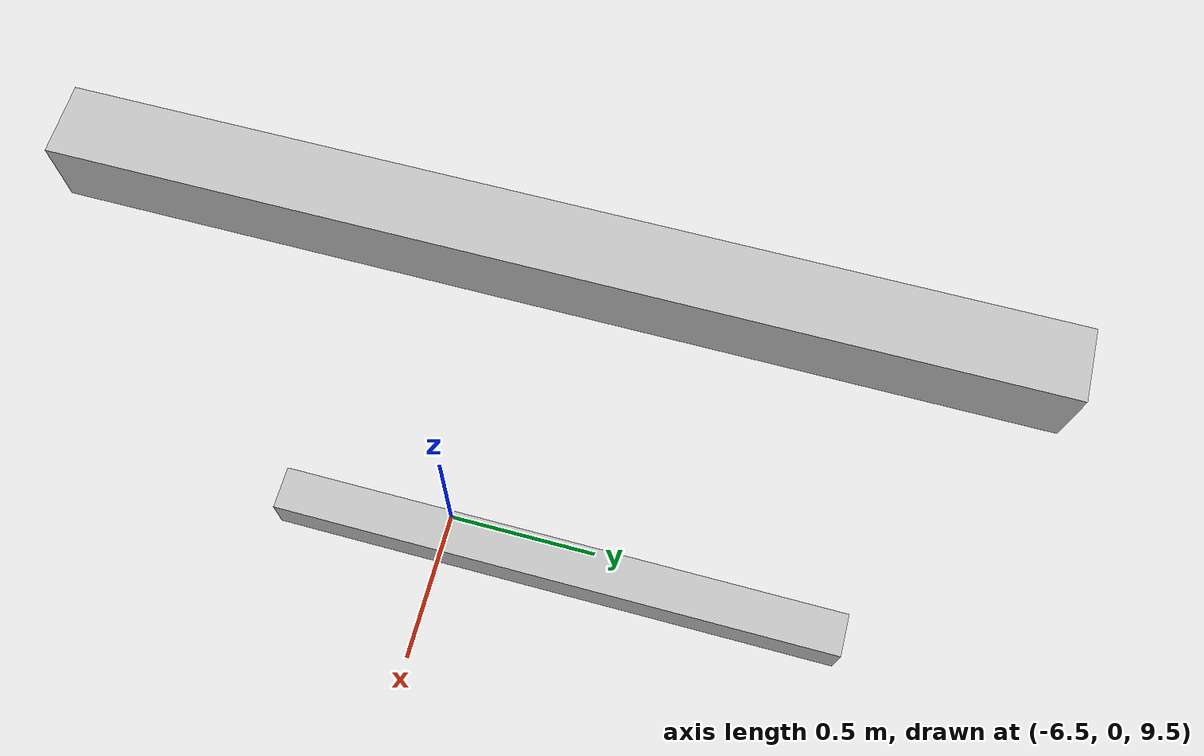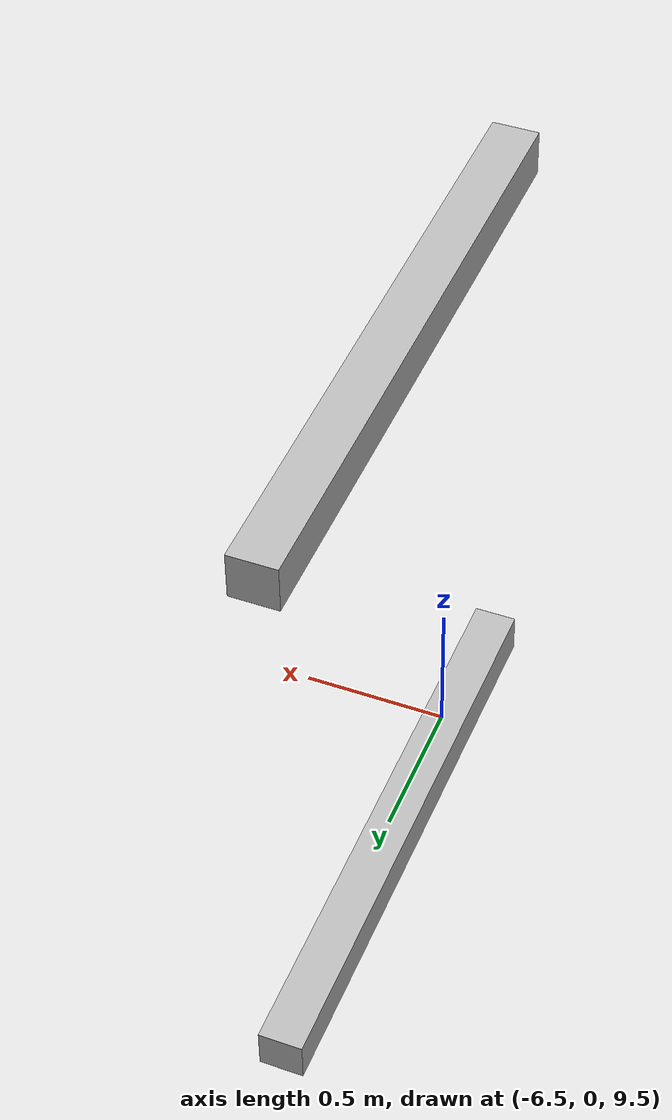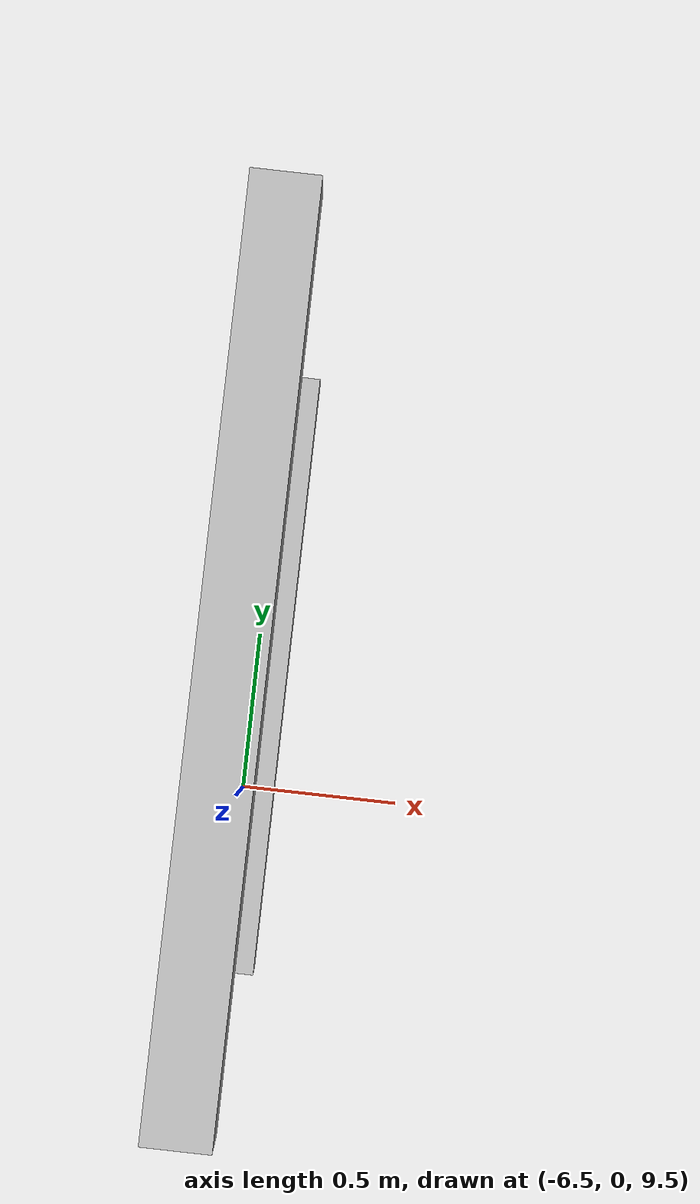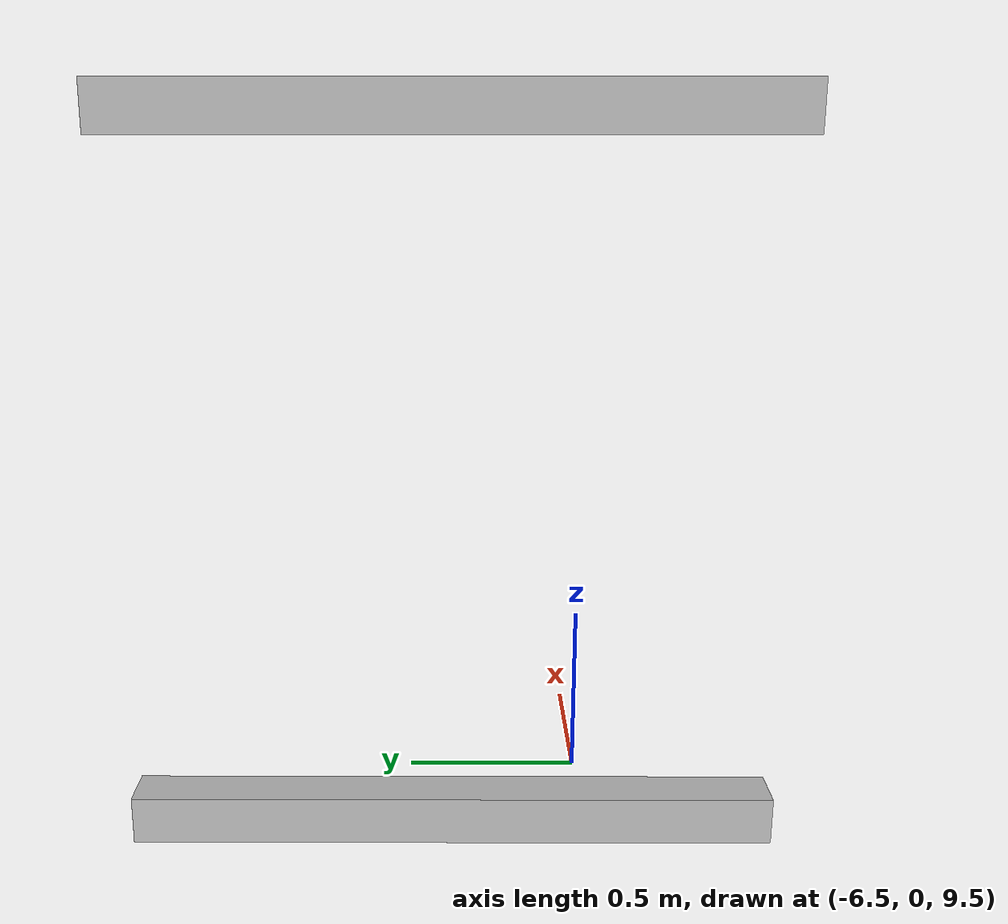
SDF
<sdf version="1.7">
 <world name="default">
  <model name="orthogonal_747_2.000.15_TS">
   <static>1</static>
   <link name="y_link_5_2_0">
    <inertial>
     <mass>1</mass>
     <inertia>
      <ixx>0.166667</ixx>
      <ixy>0</ixy>
      <ixz>0</ixz>
      <iyy>0.166667</iyy>
      <iyz>0</iyz>
      <izz>0.166667</izz>
     </inertia>
    </inertial>
    <pose>0 5.375 11.825 0 -0 0</pose>
    <visual name="visual_0">
     <laser_retro>4761</laser_retro>
     <geometry><box><size>0.15 1e-06 0.15</size></box></geometry>
     <material>
      <script><name>Gazebo/Grey</name><uri>file://media/materials/scripts/gazebo.material</uri></script>
      <shader type="pixel"><normal_map>__default__</normal_map></shader>
      <ambient>0.678 0.498 0.659 1</ambient>
      <diffuse>0.7 0.7 0.7 1</diffuse>
      <specular>0.01 0.01 0.01 1</specular>
      <emissive>0 0 0 1</emissive>
     </material>
     <pose>0 -1 0 0 -0 0</pose>
     <transparency>1</transparency>
    </visual>
    <visual name="visual_1">
     <laser_retro>4762</laser_retro>
     <geometry><box><size>0.15 1e-06 0.15</size></box></geometry>
     <material>
      <script><name>Gazebo/Grey</name><uri>file://media/materials/scripts/gazebo.material</uri></script>
      <shader type="pixel"><normal_map>__default__</normal_map></shader>
      <ambient>0.447 0.624 0.812 1</ambient>
      <diffuse>0.7 0.7 0.7 1</diffuse>
      <specular>0.01 0.01 0.01 1</specular>
      <emissive>0 0 0 1</emissive>
     </material>
     <pose>0 1 0 0 -0 0</pose>
     <transparency>1</transparency>
    </visual>
    <visual name="visual_2">
     <laser_retro>4763</laser_retro>
     <geometry><box><size>0.15 2 1e-06</size></box></geometry>
     <material>
      <script><name>Gazebo/Grey</name><uri>file://media/materials/scripts/gazebo.material</uri></script>
      <shader type="pixel"><normal_map>__default__</normal_map></shader>
      <ambient>0.988 0.686 0.243 1</ambient>
      <diffuse>0.7 0.7 0.7 1</diffuse>
      <specular>0.01 0.01 0.01 1</specular>
      <emissive>0 0 0 1</emissive>
     </material>
     <pose>0 0 -0.075 0 -0 0</pose>
     <transparency>1</transparency>
    </visual>
    <visual name="visual_3">
     <laser_retro>4764</laser_retro>
     <geometry><box><size>1e-06 2 0.15</size></box></geometry>
     <material>
      <script><name>Gazebo/Grey</name><uri>file://media/materials/scripts/gazebo.material</uri></script>
      <shader type="pixel"><normal_map>__default__</normal_map></shader>
      <ambient>0.988 0.914 0.31 1</ambient>
      <diffuse>0.7 0.7 0.7 1</diffuse>
      <specular>0.01 0.01 0.01 1</specular>
      <emissive>0 0 0 1</emissive>
     </material>
     <pose>0.075 0 0 0 -0 0</pose>
     <transparency>1</transparency>
    </visual>
    <visual name="visual_4">
     <laser_retro>4765</laser_retro>
     <geometry><box><size>0.15 2 1e-06</size></box></geometry>
     <material>
      <script><name>Gazebo/Grey</name><uri>file://media/materials/scripts/gazebo.material</uri></script>
      <shader type="pixel"><normal_map>__default__</normal_map></shader>
      <ambient>0.937 0.161 0.161 1</ambient>
      <diffuse>0.7 0.7 0.7 1</diffuse>
      <specular>0.01 0.01 0.01 1</specular>
      <emissive>0 0 0 1</emissive>
     </material>
     <pose>0 0 0.075 0 -0 0</pose>
     <transparency>1</transparency>
    </visual>
    <visual name="visual_5">
     <laser_retro>4766</laser_retro>
     <geometry><box><size>1e-06 2 0.15</size></box></geometry>
     <material>
      <script><name>Gazebo/Grey</name><uri>file://media/materials/scripts/gazebo.material</uri></script>
      <shader type="pixel"><normal_map>__default__</normal_map></shader>
      <ambient>0.541 0.886 0.204 1</ambient>
      <diffuse>0.7 0.7 0.7 1</diffuse>
      <specular>0.01 0.01 0.01 1</specular>
      <emissive>0 0 0 1</emissive>
     </material>
     <pose>-0.075 0 0 0 -0 0</pose>
     <transparency>1</transparency>
    </visual>
    <visual name="visual_texture">
     <geometry><box><size>0.149985 1.9998 0.149985</size></box></geometry>
     <material>
      <script>
       <uri>model://BASE_MODELS/simple_block_v2_textured/materials/scripts</uri>
       <uri>model://BASE_MODELS/simple_block_v2_textured/materials/textures</uri>
       <name>metal</name>
      </script>
     </material>
     <laser_retro>4767</laser_retro>
    </visual>
    <collision name="collision">
     <geometry><box><size>0.15 2 0.15</size></box></geometry>
     <surface>
      <friction>
       <ode><mu>1</mu><mu2>1</mu2><fdir1>0 0 0</fdir1><slip1>0</slip1><slip2>0</slip2></ode>
       <torsional>
        <coefficient>1</coefficient>
        <patch_radius>0</patch_radius>
        <surface_radius>0</surface_radius>
        <use_patch_radius>1</use_patch_radius>
        <ode><slip>0</slip></ode>
       </torsional>
      </friction>
      <bounce><restitution_coefficient>0</restitution_coefficient><threshold>1e+06</threshold></bounce>
      <contact>
       <collide_without_contact>0</collide_without_contact>
       <collide_without_contact_bitmask>1</collide_without_contact_bitmask>
       <collide_bitmask>1</collide_bitmask>
       <ode>
        <soft_cfm>0</soft_cfm>
        <soft_erp>0.2</soft_erp>
        <kp>1e+13</kp>
        <kd>1</kd>
        <max_vel>0.01</max_vel>
        <min_depth>0</min_depth>
       </ode>
       <bullet>
        <split_impulse>1</split_impulse>
        <split_impulse_penetration_threshold>-0.01</split_impulse_penetration_threshold>
        <soft_cfm>0</soft_cfm>
        <soft_erp>0.2</soft_erp>
        <kp>1e+13</kp>
        <kd>1</kd>
       </bullet>
      </contact>
     </surface>
    </collision>
   </link>
   <link name="y_link_6_2_0">
    <inertial>
     <mass>1</mass>
     <inertia>
      <ixx>0.166667</ixx>
      <ixy>0</ixy>
      <ixz>0</ixz>
      <iyy>0.166667</iyy>
      <iyz>0</iyz>
      <izz>0.166667</izz>
     </inertia>
    </inertial>
    <pose>0 5.375 13.975 0 -0 0</pose>
    <visual name="visual_0">
     <laser_retro>5706</laser_retro>
     <geometry><box><size>0.15 1e-06 0.15</size></box></geometry>
     <material>
      <script><name>Gazebo/Grey</name><uri>file://media/materials/scripts/gazebo.material</uri></script>
      <shader type="pixel"><normal_map>__default__</normal_map></shader>
      <ambient>0.678 0.498 0.659 1</ambient>
      <diffuse>0.7 0.7 0.7 1</diffuse>
      <specular>0.01 0.01 0.01 1</specular>
      <emissive>0 0 0 1</emissive>
     </material>
     <pose>0 -1 0 0 -0 0</pose>
     <transparency>1</transparency>
    </visual>
    <visual name="visual_1">
     <laser_retro>5707</laser_retro>
     <geometry><box><size>0.15 1e-06 0.15</size></box></geometry>
     <material>
      <script><name>Gazebo/Grey</name><uri>file://media/materials/scripts/gazebo.material</uri></script>
      <shader type="pixel"><normal_map>__default__</normal_map></shader>
      <ambient>0.447 0.624 0.812 1</ambient>
      <diffuse>0.7 0.7 0.7 1</diffuse>
      <specular>0.01 0.01 0.01 1</specular>
      <emissive>0 0 0 1</emissive>
     </material>
     <pose>0 1 0 0 -0 0</pose>
     <transparency>1</transparency>
    </visual>
    <visual name="visual_2">
     <laser_retro>5708</laser_retro>
     <geometry><box><size>0.15 2 1e-06</size></box></geometry>
     <material>
      <script><name>Gazebo/Grey</name><uri>file://media/materials/scripts/gazebo.material</uri></script>
      <shader type="pixel"><normal_map>__default__</normal_map></shader>
      <ambient>0.988 0.686 0.243 1</ambient>
      <diffuse>0.7 0.7 0.7 1</diffuse>
      <specular>0.01 0.01 0.01 1</specular>
      <emissive>0 0 0 1</emissive>
     </material>
     <pose>0 0 -0.075 0 -0 0</pose>
     <transparency>1</transparency>
    </visual>
    <visual name="visual_3">
     <laser_retro>5709</laser_retro>
     <geometry><box><size>1e-06 2 0.15</size></box></geometry>
     <material>
      <script><name>Gazebo/Grey</name><uri>file://media/materials/scripts/gazebo.material</uri></script>
      <shader type="pixel"><normal_map>__default__</normal_map></shader>
      <ambient>0.988 0.914 0.31 1</ambient>
      <diffuse>0.7 0.7 0.7 1</diffuse>
      <specular>0.01 0.01 0.01 1</specular>
      <emissive>0 0 0 1</emissive>
     </material>
     <pose>0.075 0 0 0 -0 0</pose>
     <transparency>1</transparency>
    </visual>
    <visual name="visual_4">
     <laser_retro>5710</laser_retro>
     <geometry><box><size>0.15 2 1e-06</size></box></geometry>
     <material>
      <script><name>Gazebo/Grey</name><uri>file://media/materials/scripts/gazebo.material</uri></script>
      <shader type="pixel"><normal_map>__default__</normal_map></shader>
      <ambient>0.937 0.161 0.161 1</ambient>
      <diffuse>0.7 0.7 0.7 1</diffuse>
      <specular>0.01 0.01 0.01 1</specular>
      <emissive>0 0 0 1</emissive>
     </material>
     <pose>0 0 0.075 0 -0 0</pose>
     <transparency>1</transparency>
    </visual>
    <visual name="visual_5">
     <laser_retro>5711</laser_retro>
     <geometry><box><size>1e-06 2 0.15</size></box></geometry>
     <material>
      <script><name>Gazebo/Grey</name><uri>file://media/materials/scripts/gazebo.material</uri></script>
      <shader type="pixel"><normal_map>__default__</normal_map></shader>
      <ambient>0.541 0.886 0.204 1</ambient>
      <diffuse>0.7 0.7 0.7 1</diffuse>
      <specular>0.01 0.01 0.01 1</specular>
      <emissive>0 0 0 1</emissive>
     </material>
     <pose>-0.075 0 0 0 -0 0</pose>
     <transparency>1</transparency>
    </visual>
    <visual name="visual_texture">
     <geometry><box><size>0.149985 1.9998 0.149985</size></box></geometry>
     <material>
      <script>
       <uri>model://BASE_MODELS/simple_block_v2_textured/materials/scripts</uri>
       <uri>model://BASE_MODELS/simple_block_v2_textured/materials/textures</uri>
       <name>metal</name>
      </script>
     </material>
     <laser_retro>5712</laser_retro>
    </visual>
    <collision name="collision">
     <geometry><box><size>0.15 2 0.15</size></box></geometry>
     <surface>
      <friction>
       <ode><mu>1</mu><mu2>1</mu2><fdir1>0 0 0</fdir1><slip1>0</slip1><slip2>0</slip2></ode>
       <torsional>
        <coefficient>1</coefficient>
        <patch_radius>0</patch_radius>
        <surface_radius>0</surface_radius>
        <use_patch_radius>1</use_patch_radius>
        <ode><slip>0</slip></ode>
       </torsional>
      </friction>
      <bounce><restitution_coefficient>0</restitution_coefficient><threshold>1e+06</threshold></bounce>
      <contact>
       <collide_without_contact>0</collide_without_contact>
       <collide_without_contact_bitmask>1</collide_without_contact_bitmask>
       <collide_bitmask>1</collide_bitmask>
       <ode>
        <soft_cfm>0</soft_cfm>
        <soft_erp>0.2</soft_erp>
        <kp>1e+13</kp>
        <kd>1</kd>
        <max_vel>0.01</max_vel>
        <min_depth>0</min_depth>
       </ode>
       <bullet>
        <split_impulse>1</split_impulse>
        <split_impulse_penetration_threshold>-0.01</split_impulse_penetration_threshold>
        <soft_cfm>0</soft_cfm>
        <soft_erp>0.2</soft_erp>
        <kp>1e+13</kp>
        <kd>1</kd>
       </bullet>
      </contact>
     </surface>
    </collision>
   </link>
   <pose>-6.47624 -5 -2.5 0 -0 0</pose>
  </model>
 </world>
</sdf>
